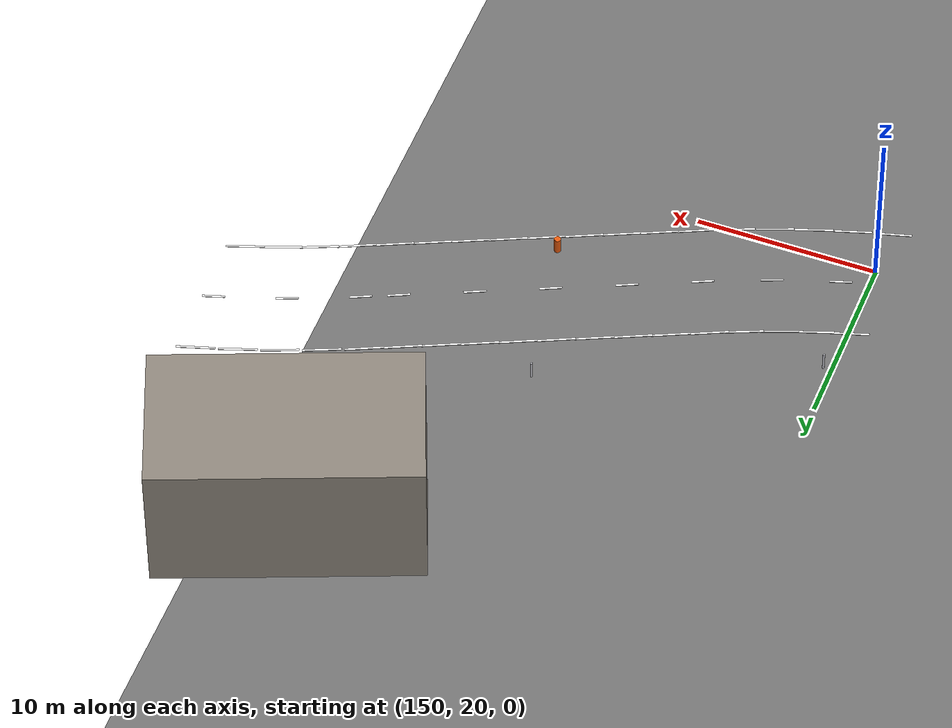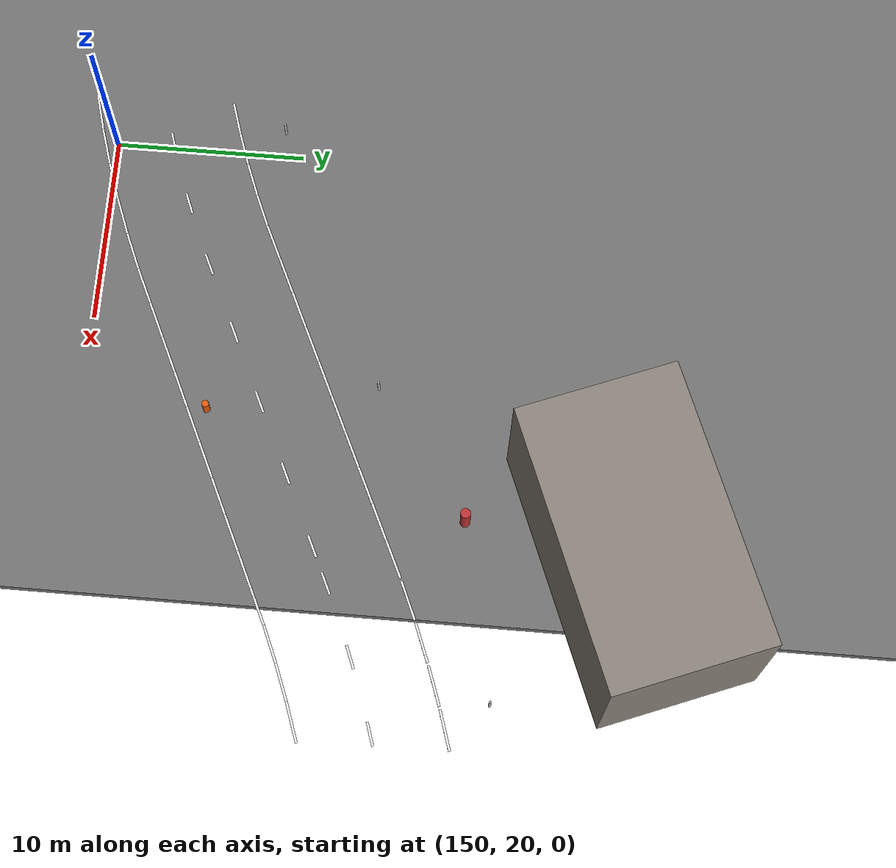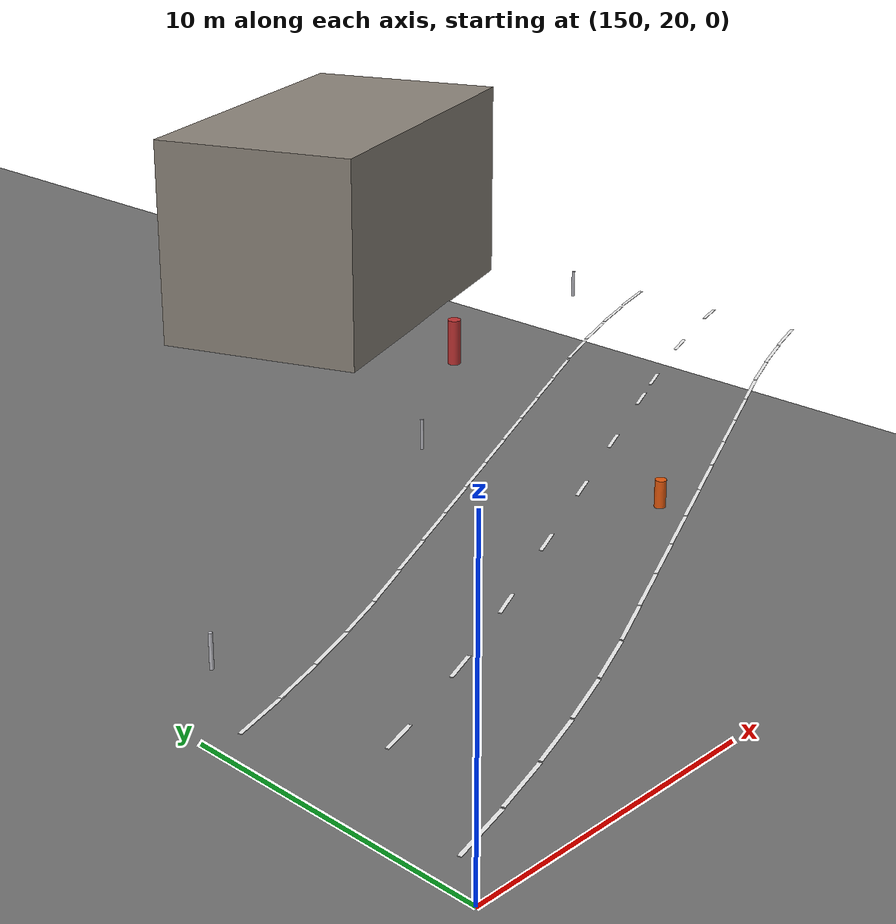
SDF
<sdf version="1.4">
 <world name="marathon_course">
  <include><uri>model://sun</uri></include>
  <model name="road_4">
   <static>true</static>
   <pose>155.20436310160932 37.70038853386919 2.4590641530702713 0 -0.017453292519943295 0</pose>
   <link name="link">
    <collision name="collision">
     <geometry><box><size>40.4 125.40077706773837 0.5</size></box></geometry>
    </collision>
    <visual name="visual">
     <geometry><box><size>40.4 125.40077706773837 0.5</size></box></geometry>
     <material><ambient>0.45 0.45 0.45 1</ambient><diffuse>0.45 0.45 0.45 1</diffuse></material>
    </visual>
   </link>
  </model>
  <model name="paint_left_edge_77">
   <static>true</static>
   <pose>149.316023774116 26.579226825591718 2.6263208898004753 0 0 0.3020762166913263</pose>
   <link name="link">
    <visual name="visual">
     <geometry><box><size>2.05 0.12 0.02</size></box></geometry>
     <material><ambient>0.95 0.95 0.95 1</ambient><diffuse>0.95 0.95 0.95 1</diffuse></material>
    </visual>
   </link>
  </model>
  <model name="paint_left_edge_78">
   <static>true</static>
   <pose>151.06094452119999 27.15526481677854 2.65677859473542 0 0 0.3356402407681403</pose>
   <link name="link">
    <visual name="visual">
     <geometry><box><size>2.05 0.12 0.02</size></box></geometry>
     <material><ambient>0.95 0.95 0.95 1</ambient><diffuse>0.95 0.95 0.95 1</diffuse></material>
    </visual>
   </link>
  </model>
  <model name="paint_left_edge_79">
   <static>true</static>
   <pose>152.7855519727208 27.789533938724094 2.6868817297774044 0 0 0.36920426484495433</pose>
   <link name="link">
    <visual name="visual">
     <geometry><box><size>2.05 0.12 0.02</size></box></geometry>
     <material><ambient>0.95 0.95 0.95 1</ambient><diffuse>0.95 0.95 0.95 1</diffuse></material>
    </visual>
   </link>
  </model>
  <model name="paint_left_edge_80">
   <static>true</static>
   <pose>154.48790346538277 28.481319726613968 2.716596385612467 0 0 0.40276828892176836</pose>
   <link name="link">
    <visual name="visual">
     <geometry><box><size>2.05 0.12 0.02</size></box></geometry>
     <material><ambient>0.95 0.95 0.95 1</ambient><diffuse>0.95 0.95 0.95 1</diffuse></material>
    </visual>
   </link>
  </model>
  <model name="paint_left_edge_81">
   <static>true</static>
   <pose>156.16608140584694 29.229842926678007 2.745889090524371 0 0 0.4363323129985824</pose>
   <link name="link">
    <visual name="visual">
     <geometry><box><size>2.05 0.12 0.02</size></box></geometry>
     <material><ambient>0.95 0.95 0.95 1</ambient><diffuse>0.95 0.95 0.95 1</diffuse></material>
    </visual>
   </link>
  </model>
  <model name="paint_left_edge_82">
   <static>true</static>
   <pose>157.97869697992024 30.075079450159407 2.777528413059719 0 0 0.4363323129985824</pose>
   <link name="link">
    <visual name="visual">
     <geometry><box><size>2.05 0.12 0.02</size></box></geometry>
     <material><ambient>0.95 0.95 0.95 1</ambient><diffuse>0.95 0.95 0.95 1</diffuse></material>
    </visual>
   </link>
  </model>
  <model name="paint_left_edge_83">
   <static>true</static>
   <pose>159.79131255399355 30.920315973640804 2.809167735595067 0 0 0.4363323129985824</pose>
   <link name="link">
    <visual name="visual">
     <geometry><box><size>2.05 0.12 0.02</size></box></geometry>
     <material><ambient>0.95 0.95 0.95 1</ambient><diffuse>0.95 0.95 0.95 1</diffuse></material>
    </visual>
   </link>
  </model>
  <model name="paint_left_edge_84">
   <static>true</static>
   <pose>161.60392812806683 31.765552497122204 2.8408070581304146 0 0 0.4363323129985824</pose>
   <link name="link">
    <visual name="visual">
     <geometry><box><size>2.05 0.12 0.02</size></box></geometry>
     <material><ambient>0.95 0.95 0.95 1</ambient><diffuse>0.95 0.95 0.95 1</diffuse></material>
    </visual>
   </link>
  </model>
  <model name="paint_left_edge_85">
   <static>true</static>
   <pose>163.41654370214013 32.610789020603605 2.8724463806657625 0 0 0.4363323129985824</pose>
   <link name="link">
    <visual name="visual">
     <geometry><box><size>2.05 0.12 0.02</size></box></geometry>
     <material><ambient>0.95 0.95 0.95 1</ambient><diffuse>0.95 0.95 0.95 1</diffuse></material>
    </visual>
   </link>
  </model>
  <model name="paint_left_edge_86">
   <static>true</static>
   <pose>165.22915927621344 33.456025544085 2.9040857032011105 0 0 0.4363323129985824</pose>
   <link name="link">
    <visual name="visual">
     <geometry><box><size>2.05 0.12 0.02</size></box></geometry>
     <material><ambient>0.95 0.95 0.95 1</ambient><diffuse>0.95 0.95 0.95 1</diffuse></material>
    </visual>
   </link>
  </model>
  <model name="paint_left_edge_87">
   <static>true</static>
   <pose>167.04177485028674 34.3012620675664 2.9357250257364584 0 0 0.4363323129985824</pose>
   <link name="link">
    <visual name="visual">
     <geometry><box><size>2.05 0.12 0.02</size></box></geometry>
     <material><ambient>0.95 0.95 0.95 1</ambient><diffuse>0.95 0.95 0.95 1</diffuse></material>
    </visual>
   </link>
  </model>
  <model name="paint_left_edge_88">
   <static>true</static>
   <pose>168.85439042436005 35.1464985910478 2.9673643482718064 0 0 0.4363323129985824</pose>
   <link name="link">
    <visual name="visual">
     <geometry><box><size>2.05 0.12 0.02</size></box></geometry>
     <material><ambient>0.95 0.95 0.95 1</ambient><diffuse>0.95 0.95 0.95 1</diffuse></material>
    </visual>
   </link>
  </model>
  <model name="paint_left_edge_89">
   <static>true</static>
   <pose>170.66700599843332 35.9917351145292 2.999003670807154 0 0 0.4363323129985824</pose>
   <link name="link">
    <visual name="visual">
     <geometry><box><size>2.05 0.12 0.02</size></box></geometry>
     <material><ambient>0.95 0.95 0.95 1</ambient><diffuse>0.95 0.95 0.95 1</diffuse></material>
    </visual>
   </link>
  </model>
  <model name="paint_left_edge_90">
   <static>true</static>
   <pose>172.47962157250663 36.836971638010596 3.030642993342502 0 0 0.4363323129985824</pose>
   <link name="link">
    <visual name="visual">
     <geometry><box><size>2.05 0.12 0.02</size></box></geometry>
     <material><ambient>0.95 0.95 0.95 1</ambient><diffuse>0.95 0.95 0.95 1</diffuse></material>
    </visual>
   </link>
  </model>
  <model name="paint_left_edge_91">
   <static>true</static>
   <pose>174.47964185771738 37.72904723260747 3.0655534772786077 0 0 0.40276828892176836</pose>
   <link name="link">
    <visual name="visual">
     <geometry><box><size>2.05 0.12 0.02</size></box></geometry>
     <material><ambient>0.95 0.95 0.95 1</ambient><diffuse>0.95 0.95 0.95 1</diffuse></material>
    </visual>
   </link>
  </model>
  <model name="paint_left_edge_92">
   <static>true</static>
   <pose>176.508471718835 38.55350426748992 3.1009668342327226 0 0 0.36920426484495433</pose>
   <link name="link">
    <visual name="visual">
     <geometry><box><size>2.05 0.12 0.02</size></box></geometry>
     <material><ambient>0.95 0.95 0.95 1</ambient><diffuse>0.95 0.95 0.95 1</diffuse></material>
    </visual>
   </link>
  </model>
  <model name="paint_left_edge_93">
   <static>true</static>
   <pose>178.56382580489407 39.30941404295928 3.1368431732553606 0 0 0.3356402407681403</pose>
   <link name="link">
    <visual name="visual">
     <geometry><box><size>2.05 0.12 0.02</size></box></geometry>
     <material><ambient>0.95 0.95 0.95 1</ambient><diffuse>0.95 0.95 0.95 1</diffuse></material>
    </visual>
   </link>
  </model>
  <model name="paint_left_edge_94">
   <static>true</static>
   <pose>180.64338888703526 39.99592507355179 3.1731420818764593 0 0 0.3020762166913262</pose>
   <link name="link">
    <visual name="visual">
     <geometry><box><size>2.05 0.12 0.02</size></box></geometry>
     <material><ambient>0.95 0.95 0.95 1</ambient><diffuse>0.95 0.95 0.95 1</diffuse></material>
    </visual>
   </link>
  </model>
  <model name="paint_right_edge_76">
   <static>true</static>
   <pose>149.409835932253 19.312902114487112 2.627958387111813 0 0 0.26851219261451226</pose>
   <link name="link">
    <visual name="visual">
     <geometry><box><size>2.05 0.12 0.02</size></box></geometry>
     <material><ambient>0.95 0.95 0.95 1</ambient><diffuse>0.95 0.95 0.95 1</diffuse></material>
    </visual>
   </link>
  </model>
  <model name="paint_right_edge_77">
   <static>true</static>
   <pose>151.3985451511024 19.8961807600319 2.662671435650174 0 0 0.3020762166913263</pose>
   <link name="link">
    <visual name="visual">
     <geometry><box><size>2.05 0.12 0.02</size></box></geometry>
     <material><ambient>0.95 0.95 0.95 1</ambient><diffuse>0.95 0.95 0.95 1</diffuse></material>
    </visual>
   </link>
  </model>
  <model name="paint_right_edge_78">
   <static>true</static>
   <pose>153.36656078822455 20.54586744415585 2.6970232763758886 0 0 0.3356402407681403</pose>
   <link name="link">
    <visual name="visual">
     <geometry><box><size>2.05 0.12 0.02</size></box></geometry>
     <material><ambient>0.95 0.95 0.95 1</ambient><diffuse>0.95 0.95 0.95 1</diffuse></material>
    </visual>
   </link>
  </model>
  <model name="paint_right_edge_79">
   <static>true</static>
   <pose>155.31166599610418 21.261230335117276 2.7309752140716417 0 0 0.36920426484495433</pose>
   <link name="link">
    <visual name="visual">
     <geometry><box><size>2.05 0.12 0.02</size></box></geometry>
     <material><ambient>0.95 0.95 0.95 1</ambient><diffuse>0.95 0.95 0.95 1</diffuse></material>
    </visual>
   </link>
  </model>
  <model name="paint_right_edge_80">
   <static>true</static>
   <pose>157.23166973440328 22.0414636210022 2.764489003986073 0 0 0.40276828892176836</pose>
   <link name="link">
    <visual name="visual">
     <geometry><box><size>2.05 0.12 0.02</size></box></geometry>
     <material><ambient>0.95 0.95 0.95 1</ambient><diffuse>0.95 0.95 0.95 1</diffuse></material>
    </visual>
   </link>
  </model>
  <model name="paint_right_edge_81">
   <static>true</static>
   <pose>159.12440923803183 22.885688417421456 2.7975268949141117 0 0 0.4363323129985824</pose>
   <link name="link">
    <visual name="visual">
     <geometry><box><size>2.05 0.12 0.02</size></box></geometry>
     <material><ambient>0.95 0.95 0.95 1</ambient><diffuse>0.95 0.95 0.95 1</diffuse></material>
    </visual>
   </link>
  </model>
  <model name="paint_right_edge_82">
   <static>true</static>
   <pose>160.93702481210514 23.730924940902856 2.8291662174494596 0 0 0.4363323129985824</pose>
   <link name="link">
    <visual name="visual">
     <geometry><box><size>2.05 0.12 0.02</size></box></geometry>
     <material><ambient>0.95 0.95 0.95 1</ambient><diffuse>0.95 0.95 0.95 1</diffuse></material>
    </visual>
   </link>
  </model>
  <model name="paint_right_edge_83">
   <static>true</static>
   <pose>162.74964038617844 24.576161464384253 2.8608055399848076 0 0 0.4363323129985824</pose>
   <link name="link">
    <visual name="visual">
     <geometry><box><size>2.05 0.12 0.02</size></box></geometry>
     <material><ambient>0.95 0.95 0.95 1</ambient><diffuse>0.95 0.95 0.95 1</diffuse></material>
    </visual>
   </link>
  </model>
  <model name="paint_right_edge_84">
   <static>true</static>
   <pose>164.56225596025172 25.421397987865653 2.892444862520155 0 0 0.4363323129985824</pose>
   <link name="link">
    <visual name="visual">
     <geometry><box><size>2.05 0.12 0.02</size></box></geometry>
     <material><ambient>0.95 0.95 0.95 1</ambient><diffuse>0.95 0.95 0.95 1</diffuse></material>
    </visual>
   </link>
  </model>
  <model name="paint_right_edge_85">
   <static>true</static>
   <pose>166.37487153432502 26.26663451134705 2.924084185055503 0 0 0.4363323129985824</pose>
   <link name="link">
    <visual name="visual">
     <geometry><box><size>2.05 0.12 0.02</size></box></geometry>
     <material><ambient>0.95 0.95 0.95 1</ambient><diffuse>0.95 0.95 0.95 1</diffuse></material>
    </visual>
   </link>
  </model>
  <model name="paint_right_edge_86">
   <static>true</static>
   <pose>168.18748710839833 27.11187103482845 2.955723507590851 0 0 0.4363323129985824</pose>
   <link name="link">
    <visual name="visual">
     <geometry><box><size>2.05 0.12 0.02</size></box></geometry>
     <material><ambient>0.95 0.95 0.95 1</ambient><diffuse>0.95 0.95 0.95 1</diffuse></material>
    </visual>
   </link>
  </model>
  <model name="paint_right_edge_87">
   <static>true</static>
   <pose>170.00010268247163 27.95710755830985 2.987362830126199 0 0 0.4363323129985824</pose>
   <link name="link">
    <visual name="visual">
     <geometry><box><size>2.05 0.12 0.02</size></box></geometry>
     <material><ambient>0.95 0.95 0.95 1</ambient><diffuse>0.95 0.95 0.95 1</diffuse></material>
    </visual>
   </link>
  </model>
  <model name="paint_right_edge_88">
   <static>true</static>
   <pose>171.81271825654494 28.802344081791247 3.019002152661547 0 0 0.4363323129985824</pose>
   <link name="link">
    <visual name="visual">
     <geometry><box><size>2.05 0.12 0.02</size></box></geometry>
     <material><ambient>0.95 0.95 0.95 1</ambient><diffuse>0.95 0.95 0.95 1</diffuse></material>
    </visual>
   </link>
  </model>
  <model name="paint_right_edge_89">
   <static>true</static>
   <pose>173.62533383061822 29.647580605272648 3.0506414751968944 0 0 0.4363323129985824</pose>
   <link name="link">
    <visual name="visual">
     <geometry><box><size>2.05 0.12 0.02</size></box></geometry>
     <material><ambient>0.95 0.95 0.95 1</ambient><diffuse>0.95 0.95 0.95 1</diffuse></material>
    </visual>
   </link>
  </model>
  <model name="paint_right_edge_90">
   <static>true</static>
   <pose>175.43794940469152 30.492817128754048 3.0822807977322424 0 0 0.4363323129985824</pose>
   <link name="link">
    <visual name="visual">
     <geometry><box><size>2.05 0.12 0.02</size></box></geometry>
     <material><ambient>0.95 0.95 0.95 1</ambient><diffuse>0.95 0.95 0.95 1</diffuse></material>
    </visual>
   </link>
  </model>
  <model name="paint_right_edge_91">
   <static>true</static>
   <pose>177.2234081267379 31.289191126995703 3.113446095652214 0 0 0.40276828892176836</pose>
   <link name="link">
    <visual name="visual">
     <geometry><box><size>2.05 0.12 0.02</size></box></geometry>
     <material><ambient>0.95 0.95 0.95 1</ambient><diffuse>0.95 0.95 0.95 1</diffuse></material>
    </visual>
   </link>
  </model>
  <model name="paint_right_edge_92">
   <static>true</static>
   <pose>179.03458574221838 32.0252006638831 3.1450603185269603 0 0 0.36920426484495433</pose>
   <link name="link">
    <visual name="visual">
     <geometry><box><size>2.05 0.12 0.02</size></box></geometry>
     <material><ambient>0.95 0.95 0.95 1</ambient><diffuse>0.95 0.95 0.95 1</diffuse></material>
    </visual>
   </link>
  </model>
  <model name="paint_right_edge_93">
   <static>true</static>
   <pose>180.86944207191863 32.700016670336595 3.177087854895829 0 0 0.3356402407681403</pose>
   <link name="link">
    <visual name="visual">
     <geometry><box><size>2.05 0.12 0.02</size></box></geometry>
     <material><ambient>0.95 0.95 0.95 1</ambient><diffuse>0.95 0.95 0.95 1</diffuse></material>
    </visual>
   </link>
  </model>
  <model name="paint_divider_42">
   <static>true</static>
   <pose>150.88978773491039 23.406443945012562 2.65379104191783 0 0 0.3116659378561303</pose>
   <link name="link">
    <visual name="visual">
     <geometry><box><size>1.2 0.12 0.02</size></box></geometry>
     <material><ambient>0.95 0.95 0.95 1</ambient><diffuse>0.95 0.95 0.95 1</diffuse></material>
    </visual>
   </link>
  </model>
  <model name="paint_divider_43">
   <static>true</static>
   <pose>154.30884624488615 24.626798408409698 2.713470930202832 0 0 0.3739991254273563</pose>
   <link name="link">
    <visual name="visual">
     <geometry><box><size>1.2 0.12 0.02</size></box></geometry>
     <material><ambient>0.95 0.95 0.95 1</ambient><diffuse>0.95 0.95 0.95 1</diffuse></material>
    </visual>
   </link>
  </model>
  <model name="paint_divider_44">
   <static>true</static>
   <pose>157.6452453219394 26.057765672049733 2.7717079927192416 0 0 0.4363323129985824</pose>
   <link name="link">
    <visual name="visual">
     <geometry><box><size>1.2 0.12 0.02</size></box></geometry>
     <material><ambient>0.95 0.95 0.95 1</ambient><diffuse>0.95 0.95 0.95 1</diffuse></material>
    </visual>
   </link>
  </model>
  <model name="paint_divider_45">
   <static>true</static>
   <pose>161.270476470086 27.74823871901253 2.8349866377899375 0 0 0.4363323129985824</pose>
   <link name="link">
    <visual name="visual">
     <geometry><box><size>1.2 0.12 0.02</size></box></geometry>
     <material><ambient>0.95 0.95 0.95 1</ambient><diffuse>0.95 0.95 0.95 1</diffuse></material>
    </visual>
   </link>
  </model>
  <model name="paint_divider_46">
   <static>true</static>
   <pose>164.8957076182326 29.438711765975327 2.898265282860633 0 0 0.4363323129985824</pose>
   <link name="link">
    <visual name="visual">
     <geometry><box><size>1.2 0.12 0.02</size></box></geometry>
     <material><ambient>0.95 0.95 0.95 1</ambient><diffuse>0.95 0.95 0.95 1</diffuse></material>
    </visual>
   </link>
  </model>
  <model name="paint_divider_47">
   <static>true</static>
   <pose>168.5209387663792 31.129184812938128 2.961543927931329 0 0 0.4363323129985824</pose>
   <link name="link">
    <visual name="visual">
     <geometry><box><size>1.2 0.12 0.02</size></box></geometry>
     <material><ambient>0.95 0.95 0.95 1</ambient><diffuse>0.95 0.95 0.95 1</diffuse></material>
    </visual>
   </link>
  </model>
  <model name="paint_divider_48">
   <static>true</static>
   <pose>172.14616991452579 32.81965785990092 3.0248225730020244 0 0 0.4363323129985824</pose>
   <link name="link">
    <visual name="visual">
     <geometry><box><size>1.2 0.12 0.02</size></box></geometry>
     <material><ambient>0.95 0.95 0.95 1</ambient><diffuse>0.95 0.95 0.95 1</diffuse></material>
    </visual>
   </link>
  </model>
  <model name="paint_divider_49">
   <static>true</static>
   <pose>173.9587854885991 33.664894383382325 3.0564618955373724 0 0 0.4363323129985824</pose>
   <link name="link">
    <visual name="visual">
     <geometry><box><size>1.2 0.12 0.02</size></box></geometry>
     <material><ambient>0.95 0.95 0.95 1</ambient><diffuse>0.95 0.95 0.95 1</diffuse></material>
    </visual>
   </link>
  </model>
  <model name="paint_divider_50">
   <static>true</static>
   <pose>177.49565489646238 35.1818425126488 3.1181981806942525 0 0 0.37399912542735636</pose>
   <link name="link">
    <visual name="visual">
     <geometry><box><size>1.2 0.12 0.02</size></box></geometry>
     <material><ambient>0.95 0.95 0.95 1</ambient><diffuse>0.95 0.95 0.95 1</diffuse></material>
    </visual>
   </link>
  </model>
  <model name="paint_divider_51">
   <static>true</static>
   <pose>181.1201503984539 36.47552299530585 3.1814639850135467 0 0 0.3116659378561303</pose>
   <link name="link">
    <visual name="visual">
     <geometry><box><size>1.2 0.12 0.02</size></box></geometry>
     <material><ambient>0.95 0.95 0.95 1</ambient><diffuse>0.95 0.95 0.95 1</diffuse></material>
    </visual>
   </link>
  </model>
  <model name="lane_cone_b">
   <static>true</static>
   <pose>165.50530825030776 26.85419061982564 3.3389059014737876 0 0 0.4363323129985824</pose>
   <link name="link">
    <collision name="collision">
     <geometry><cylinder><radius>0.18</radius><length>0.9</length></cylinder></geometry>
    </collision>
    <visual name="visual">
     <geometry><cylinder><radius>0.18</radius><length>0.9</length></cylinder></geometry>
     <material><ambient>0.9 0.35 0.05 1</ambient><diffuse>0.9 0.35 0.05 1</diffuse></material>
    </visual>
   </link>
  </model>
  <model name="building_4">
   <static>true</static>
   <pose>171.96182513677635 48.31505757692645 7.00160482293723 0 0 0.3786465475944662</pose>
   <link name="link">
    <collision name="collision"><geometry><box><size>14.0 8.0 8.0</size></box></geometry></collision>
    <visual name="visual">
     <geometry><box><size>14.0 8.0 8.0</size></box></geometry>
     <material><ambient>0.55 0.52 0.48 1</ambient><diffuse>0.55 0.52 0.48 1</diffuse></material>
    </visual>
   </link>
  </model>
  <model name="barrier_9">
   <static>true</static>
   <pose>149.87545342804134 29.234743650415844 3.1410857707325124 0 0 0.3273494559149129</pose>
   <link name="link">
    <collision name="collision">
     <geometry><cylinder><radius>0.06</radius><length>1.05</length></cylinder></geometry>
    </collision>
    <visual name="visual">
     <geometry><cylinder><radius>0.06</radius><length>1.05</length></cylinder></geometry>
     <material><ambient>0.75 0.75 0.78 1</ambient><diffuse>0.75 0.75 0.78 1</diffuse></material>
    </visual>
   </link>
  </model>
  <model name="barrier_10">
   <static>true</static>
   <pose>163.7476019057601 35.35810210580847 3.383225023104968 0 0 0.4363323129985824</pose>
   <link name="link">
    <collision name="collision">
     <geometry><cylinder><radius>0.06</radius><length>1.05</length></cylinder></geometry>
    </collision>
    <visual name="visual">
     <geometry><cylinder><radius>0.06</radius><length>1.05</length></cylinder></geometry>
     <material><ambient>0.75 0.75 0.78 1</ambient><diffuse>0.75 0.75 0.78 1</diffuse></material>
    </visual>
   </link>
  </model>
  <model name="barrier_11">
   <static>true</static>
   <pose>179.30675521695798 42.03525324396831 3.6548110543800187 0 0 0.31197909859935063</pose>
   <link name="link">
    <collision name="collision">
     <geometry><cylinder><radius>0.06</radius><length>1.05</length></cylinder></geometry>
    </collision>
    <visual name="visual">
     <geometry><cylinder><radius>0.06</radius><length>1.05</length></cylinder></geometry>
     <material><ambient>0.75 0.75 0.78 1</ambient><diffuse>0.75 0.75 0.78 1</diffuse></material>
    </visual>
   </link>
  </model>
  <model name="walker_1">
   <static>true</static>
   <pose>170.3218749832681 40.18914065899267 3.822979386528703 0 0 0.4363323129985824</pose>
   <link name="link">
    <collision name="collision">
     <geometry><cylinder><radius>0.25</radius><length>1.7</length></cylinder></geometry>
    </collision>
    <visual name="visual">
     <geometry><cylinder><radius>0.25</radius><length>1.7</length></cylinder></geometry>
     <material><ambient>0.75 0.2 0.2 1</ambient><diffuse>0.75 0.2 0.2 1</diffuse></material>
    </visual>
   </link>
  </model>
 </world>
</sdf>
